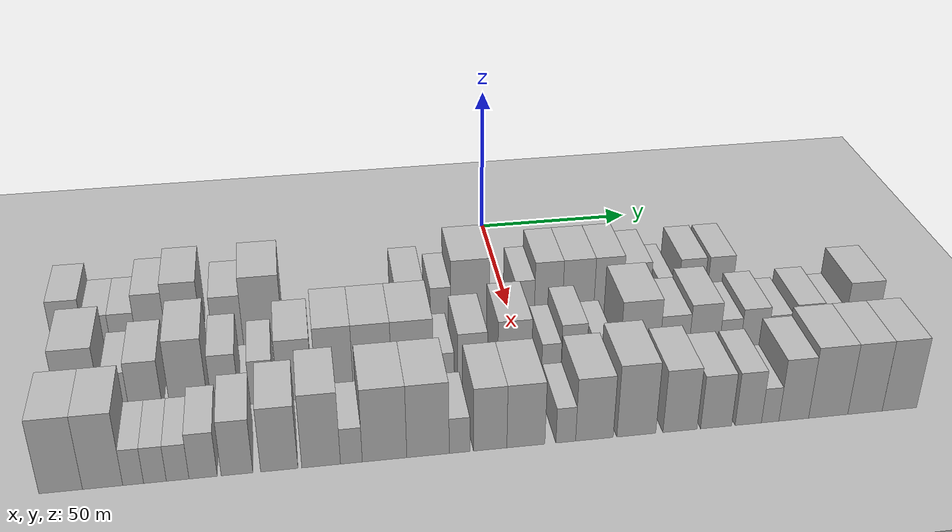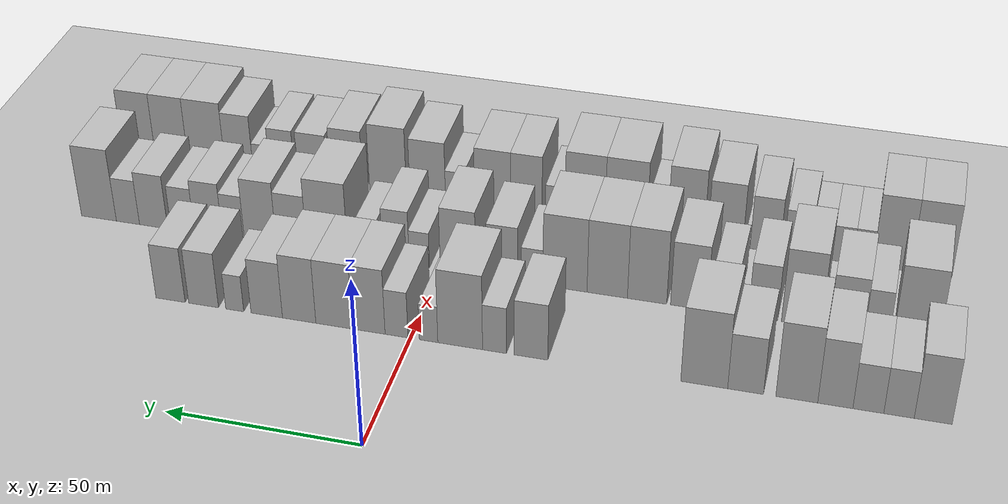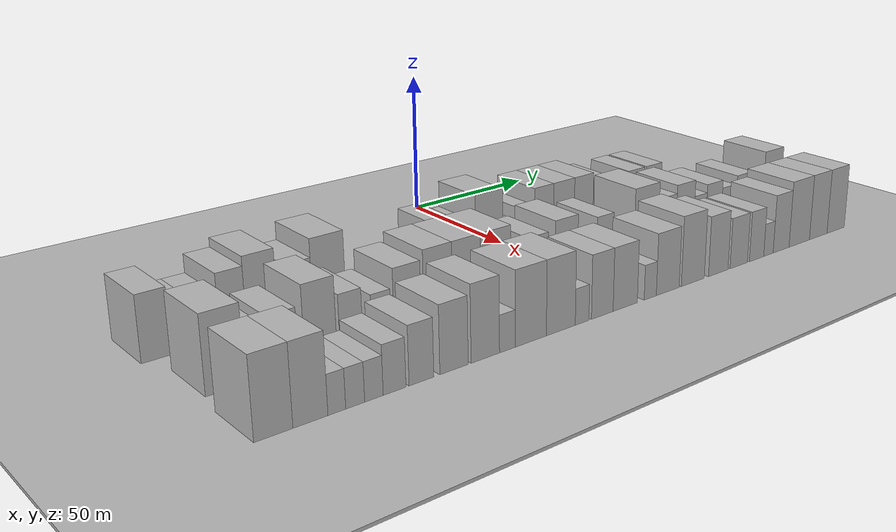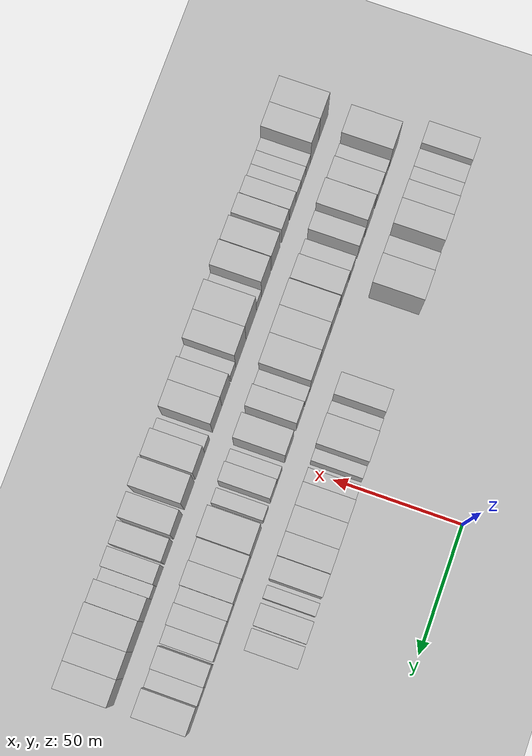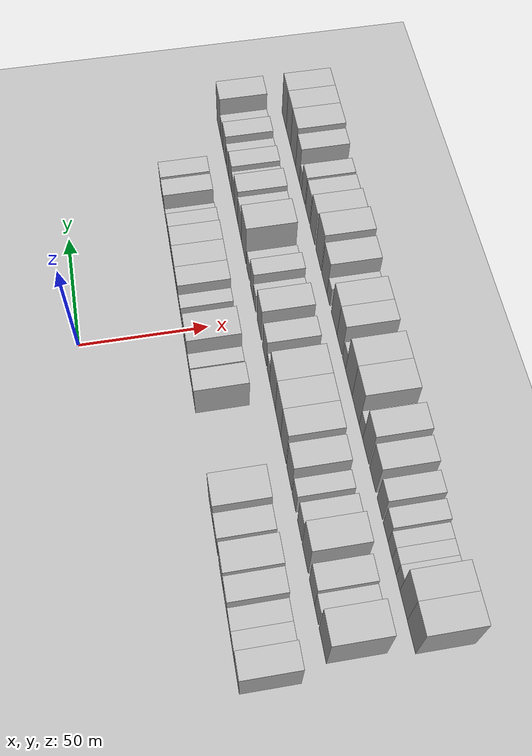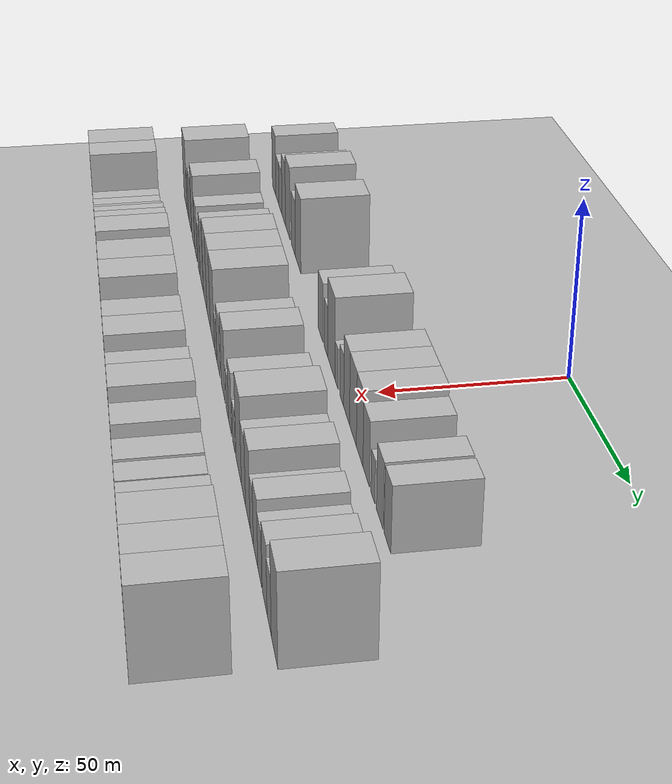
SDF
<sdf version="1.6">
 <world name="default">
  <include><name>ground_plane_1</name><uri>model://HANNAS_ground_plane</uri></include>
  <include>
   <name>ground_plane_2</name>
   <uri>model://HANNAS_ground_plane</uri>
   <pose>100 0 0  0 0 0</pose>
  </include>
  <model name="building_24">
   <static>1</static>
   <pose>50.0000 -131.1385 0 0.000000 0.000000 0.000000</pose>
   <link name="link">
    <pose>0 0 10.50 0 0 0</pose>
    <collision name="collision"><geometry><box><size>20.0000 9.0091 21.0000</size></box></geometry></collision>
    <visual name="visual">
     <cast_shadows>0</cast_shadows>
     <geometry><box><size>20.0000 9.0091 21.0000</size></box></geometry>
     <material>
      <script>
       <uri>model://HANNAS_wall/materials/scripts</uri>
       <uri>model://HANNAS_wall/materials/textures</uri>
       <name>vrc/HANNAS_wall</name>
      </script>
     </material>
    </visual>
   </link>
  </model>
  <model name="building_25">
   <static>1</static>
   <pose>50.0000 -122.9975 0 0.000000 0.000000 0.000000</pose>
   <link name="link">
    <pose>0 0 7.50 0 0 0</pose>
    <collision name="collision"><geometry><box><size>20.0000 7.2728 15.0000</size></box></geometry></collision>
    <visual name="visual">
     <cast_shadows>0</cast_shadows>
     <geometry><box><size>20.0000 7.2728 15.0000</size></box></geometry>
     <material>
      <script>
       <uri>model://HANNAS_wall/materials/scripts</uri>
       <uri>model://HANNAS_wall/materials/textures</uri>
       <name>vrc/HANNAS_wall</name>
      </script>
     </material>
    </visual>
   </link>
  </model>
  <model name="building_26">
   <static>1</static>
   <pose>50.0000 -115.6475 0 0.000000 0.000000 0.000000</pose>
   <link name="link">
    <pose>0 0 7.50 0 0 0</pose>
    <collision name="collision"><geometry><box><size>20.0000 7.4273 15.0000</size></box></geometry></collision>
    <visual name="visual">
     <cast_shadows>0</cast_shadows>
     <geometry><box><size>20.0000 7.4273 15.0000</size></box></geometry>
     <material>
      <script>
       <uri>model://HANNAS_wall/materials/scripts</uri>
       <uri>model://HANNAS_wall/materials/textures</uri>
       <name>vrc/HANNAS_wall</name>
      </script>
     </material>
    </visual>
   </link>
  </model>
  <model name="building_27">
   <static>1</static>
   <pose>50.0000 -107.6770 0 0.000000 0.000000 0.000000</pose>
   <link name="link">
    <pose>0 0 10.50 0 0 0</pose>
    <collision name="collision"><geometry><box><size>20.0000 8.5136 21.0000</size></box></geometry></collision>
    <visual name="visual">
     <cast_shadows>0</cast_shadows>
     <geometry><box><size>20.0000 8.5136 21.0000</size></box></geometry>
     <material>
      <script>
       <uri>model://HANNAS_wall/materials/scripts</uri>
       <uri>model://HANNAS_wall/materials/textures</uri>
       <name>vrc/HANNAS_wall</name>
      </script>
     </material>
    </visual>
   </link>
  </model>
  <model name="building_28">
   <static>1</static>
   <pose>50.0000 -98.3052 0 0.000000 0.000000 0.000000</pose>
   <link name="link">
    <pose>0 0 12.00 0 0 0</pose>
    <collision name="collision"><geometry><box><size>20.0000 10.2300 24.0000</size></box></geometry></collision>
    <visual name="visual">
     <cast_shadows>0</cast_shadows>
     <geometry><box><size>20.0000 10.2300 24.0000</size></box></geometry>
     <material>
      <script>
       <uri>model://HANNAS_wall/materials/scripts</uri>
       <uri>model://HANNAS_wall/materials/textures</uri>
       <name>vrc/HANNAS_wall</name>
      </script>
     </material>
    </visual>
   </link>
  </model>
  <model name="building_29">
   <static>1</static>
   <pose>50.0000 -85.7666 0 0.000000 0.000000 0.000000</pose>
   <link name="link">
    <pose>0 0 9.00 0 0 0</pose>
    <collision name="collision"><geometry><box><size>20.0000 8.8471 18.0000</size></box></geometry></collision>
    <visual name="visual">
     <cast_shadows>0</cast_shadows>
     <geometry><box><size>20.0000 8.8471 18.0000</size></box></geometry>
     <material>
      <script>
       <uri>model://HANNAS_wall/materials/scripts</uri>
       <uri>model://HANNAS_wall/materials/textures</uri>
       <name>vrc/HANNAS_wall</name>
      </script>
     </material>
    </visual>
   </link>
  </model>
  <model name="building_30">
   <static>1</static>
   <pose>50.0000 -75.5026 0 0.000000 0.000000 0.000000</pose>
   <link name="link">
    <pose>0 0 12.00 0 0 0</pose>
    <collision name="collision"><geometry><box><size>20.0000 11.6808 24.0000</size></box></geometry></collision>
    <visual name="visual">
     <cast_shadows>0</cast_shadows>
     <geometry><box><size>20.0000 11.6808 24.0000</size></box></geometry>
     <material>
      <script>
       <uri>model://HANNAS_wall/materials/scripts</uri>
       <uri>model://HANNAS_wall/materials/textures</uri>
       <name>vrc/HANNAS_wall</name>
      </script>
     </material>
    </visual>
   </link>
  </model>
  <model name="building_31">
   <static>1</static>
   <pose>50.0000 -31.6511 0 0.000000 0.000000 0.000000</pose>
   <link name="link">
    <pose>0 0 9.00 0 0 0</pose>
    <collision name="collision"><geometry><box><size>20.0000 8.6741 18.0000</size></box></geometry></collision>
    <visual name="visual">
     <cast_shadows>0</cast_shadows>
     <geometry><box><size>20.0000 8.6741 18.0000</size></box></geometry>
     <material>
      <script>
       <uri>model://HANNAS_wall/materials/scripts</uri>
       <uri>model://HANNAS_wall/materials/textures</uri>
       <name>vrc/HANNAS_wall</name>
      </script>
     </material>
    </visual>
   </link>
  </model>
  <model name="building_32">
   <static>1</static>
   <pose>50.0000 -22.1892 0 0.000000 0.000000 0.000000</pose>
   <link name="link">
    <pose>0 0 7.50 0 0 0</pose>
    <collision name="collision"><geometry><box><size>20.0000 6.2497 15.0000</size></box></geometry></collision>
    <visual name="visual">
     <cast_shadows>0</cast_shadows>
     <geometry><box><size>20.0000 6.2497 15.0000</size></box></geometry>
     <material>
      <script>
       <uri>model://HANNAS_wall/materials/scripts</uri>
       <uri>model://HANNAS_wall/materials/textures</uri>
       <name>vrc/HANNAS_wall</name>
      </script>
     </material>
    </visual>
   </link>
  </model>
  <model name="building_33">
   <static>1</static>
   <pose>50.0000 -13.2062 0 0.000000 0.000000 0.000000</pose>
   <link name="link">
    <pose>0 0 12.00 0 0 0</pose>
    <collision name="collision"><geometry><box><size>20.0000 11.7163 24.0000</size></box></geometry></collision>
    <visual name="visual">
     <cast_shadows>0</cast_shadows>
     <geometry><box><size>20.0000 11.7163 24.0000</size></box></geometry>
     <material>
      <script>
       <uri>model://HANNAS_wall/materials/scripts</uri>
       <uri>model://HANNAS_wall/materials/textures</uri>
       <name>vrc/HANNAS_wall</name>
      </script>
     </material>
    </visual>
   </link>
  </model>
  <model name="building_34">
   <static>1</static>
   <pose>50.0000 -4.9149 0 0.000000 0.000000 0.000000</pose>
   <link name="link">
    <pose>0 0 6.00 0 0 0</pose>
    <collision name="collision"><geometry><box><size>20.0000 4.8664 12.0000</size></box></geometry></collision>
    <visual name="visual">
     <cast_shadows>0</cast_shadows>
     <geometry><box><size>20.0000 4.8664 12.0000</size></box></geometry>
     <material>
      <script>
       <uri>model://HANNAS_wall/materials/scripts</uri>
       <uri>model://HANNAS_wall/materials/textures</uri>
       <name>vrc/HANNAS_wall</name>
      </script>
     </material>
    </visual>
   </link>
  </model>
  <model name="building_35">
   <static>1</static>
   <pose>50.0000 3.5625 0 0.000000 0.000000 0.000000</pose>
   <link name="link">
    <pose>0 0 7.50 0 0 0</pose>
    <collision name="collision"><geometry><box><size>20.0000 6.0884 15.0000</size></box></geometry></collision>
    <visual name="visual">
     <cast_shadows>0</cast_shadows>
     <geometry><box><size>20.0000 6.0884 15.0000</size></box></geometry>
     <material>
      <script>
       <uri>model://HANNAS_wall/materials/scripts</uri>
       <uri>model://HANNAS_wall/materials/textures</uri>
       <name>vrc/HANNAS_wall</name>
      </script>
     </material>
    </visual>
   </link>
  </model>
  <model name="building_36">
   <static>1</static>
   <pose>50.0000 10.9737 0 0.000000 0.000000 0.000000</pose>
   <link name="link">
    <pose>0 0 10.50 0 0 0</pose>
    <collision name="collision"><geometry><box><size>20.0000 8.7339 21.0000</size></box></geometry></collision>
    <visual name="visual">
     <cast_shadows>0</cast_shadows>
     <geometry><box><size>20.0000 8.7339 21.0000</size></box></geometry>
     <material>
      <script>
       <uri>model://HANNAS_wall/materials/scripts</uri>
       <uri>model://HANNAS_wall/materials/textures</uri>
       <name>vrc/HANNAS_wall</name>
      </script>
     </material>
    </visual>
   </link>
  </model>
  <model name="building_37">
   <static>1</static>
   <pose>50.0000 20.2652 0 0.000000 0.000000 0.000000</pose>
   <link name="link">
    <pose>0 0 10.50 0 0 0</pose>
    <collision name="collision"><geometry><box><size>20.0000 9.8492 21.0000</size></box></geometry></collision>
    <visual name="visual">
     <cast_shadows>0</cast_shadows>
     <geometry><box><size>20.0000 9.8492 21.0000</size></box></geometry>
     <material>
      <script>
       <uri>model://HANNAS_wall/materials/scripts</uri>
       <uri>model://HANNAS_wall/materials/textures</uri>
       <name>vrc/HANNAS_wall</name>
      </script>
     </material>
    </visual>
   </link>
  </model>
  <model name="building_38">
   <static>1</static>
   <pose>50.0000 29.7162 0 0.000000 0.000000 0.000000</pose>
   <link name="link">
    <pose>0 0 10.50 0 0 0</pose>
    <collision name="collision"><geometry><box><size>20.0000 9.0526 21.0000</size></box></geometry></collision>
    <visual name="visual">
     <cast_shadows>0</cast_shadows>
     <geometry><box><size>20.0000 9.0526 21.0000</size></box></geometry>
     <material>
      <script>
       <uri>model://HANNAS_wall/materials/scripts</uri>
       <uri>model://HANNAS_wall/materials/textures</uri>
       <name>vrc/HANNAS_wall</name>
      </script>
     </material>
    </visual>
   </link>
  </model>
  <model name="building_39">
   <static>1</static>
   <pose>50.0000 38.5405 0 0.000000 0.000000 0.000000</pose>
   <link name="link">
    <pose>0 0 9.00 0 0 0</pose>
    <collision name="collision"><geometry><box><size>20.0000 8.5960 18.0000</size></box></geometry></collision>
    <visual name="visual">
     <cast_shadows>0</cast_shadows>
     <geometry><box><size>20.0000 8.5960 18.0000</size></box></geometry>
     <material>
      <script>
       <uri>model://HANNAS_wall/materials/scripts</uri>
       <uri>model://HANNAS_wall/materials/textures</uri>
       <name>vrc/HANNAS_wall</name>
      </script>
     </material>
    </visual>
   </link>
  </model>
  <model name="building_40">
   <static>1</static>
   <pose>50.0000 47.3137 0 0.000000 0.000000 0.000000</pose>
   <link name="link">
    <pose>0 0 6.00 0 0 0</pose>
    <collision name="collision"><geometry><box><size>20.0000 4.9505 12.0000</size></box></geometry></collision>
    <visual name="visual">
     <cast_shadows>0</cast_shadows>
     <geometry><box><size>20.0000 4.9505 12.0000</size></box></geometry>
     <material>
      <script>
       <uri>model://HANNAS_wall/materials/scripts</uri>
       <uri>model://HANNAS_wall/materials/textures</uri>
       <name>vrc/HANNAS_wall</name>
      </script>
     </material>
    </visual>
   </link>
  </model>
  <model name="building_41">
   <static>1</static>
   <pose>50.0000 55.9212 0 0.000000 0.000000 0.000000</pose>
   <link name="link">
    <pose>0 0 9.00 0 0 0</pose>
    <collision name="collision"><geometry><box><size>20.0000 8.2644 18.0000</size></box></geometry></collision>
    <visual name="visual">
     <cast_shadows>0</cast_shadows>
     <geometry><box><size>20.0000 8.2644 18.0000</size></box></geometry>
     <material>
      <script>
       <uri>model://HANNAS_wall/materials/scripts</uri>
       <uri>model://HANNAS_wall/materials/textures</uri>
       <name>vrc/HANNAS_wall</name>
      </script>
     </material>
    </visual>
   </link>
  </model>
  <model name="building_42">
   <static>1</static>
   <pose>50.0000 65.1122 0 0.000000 0.000000 0.000000</pose>
   <link name="link">
    <pose>0 0 9.00 0 0 0</pose>
    <collision name="collision"><geometry><box><size>20.0000 8.1175 18.0000</size></box></geometry></collision>
    <visual name="visual">
     <cast_shadows>0</cast_shadows>
     <geometry><box><size>20.0000 8.1175 18.0000</size></box></geometry>
     <material>
      <script>
       <uri>model://HANNAS_wall/materials/scripts</uri>
       <uri>model://HANNAS_wall/materials/textures</uri>
       <name>vrc/HANNAS_wall</name>
      </script>
     </material>
    </visual>
   </link>
  </model>
  <model name="building_91">
   <static>1</static>
   <pose>79.0000 -125.2191 0 0.000000 0.000000 0.000000</pose>
   <link name="link">
    <pose>0 0 12.00 0 0 0</pose>
    <collision name="collision"><geometry><box><size>20.0000 11.4452 24.0000</size></box></geometry></collision>
    <visual name="visual">
     <cast_shadows>0</cast_shadows>
     <geometry><box><size>20.0000 11.4452 24.0000</size></box></geometry>
     <material>
      <script>
       <uri>model://HANNAS_wall/materials/scripts</uri>
       <uri>model://HANNAS_wall/materials/textures</uri>
       <name>vrc/HANNAS_wall</name>
      </script>
     </material>
    </visual>
   </link>
  </model>
  <model name="building_92">
   <static>1</static>
   <pose>79.0000 -115.3726 0 0.000000 0.000000 0.000000</pose>
   <link name="link">
    <pose>0 0 7.50 0 0 0</pose>
    <collision name="collision"><geometry><box><size>20.0000 6.2477 15.0000</size></box></geometry></collision>
    <visual name="visual">
     <cast_shadows>0</cast_shadows>
     <geometry><box><size>20.0000 6.2477 15.0000</size></box></geometry>
     <material>
      <script>
       <uri>model://HANNAS_wall/materials/scripts</uri>
       <uri>model://HANNAS_wall/materials/textures</uri>
       <name>vrc/HANNAS_wall</name>
      </script>
     </material>
    </visual>
   </link>
  </model>
  <model name="building_93">
   <static>1</static>
   <pose>79.0000 -107.7630 0 0.000000 0.000000 0.000000</pose>
   <link name="link">
    <pose>0 0 9.00 0 0 0</pose>
    <collision name="collision"><geometry><box><size>20.0000 8.9715 18.0000</size></box></geometry></collision>
    <visual name="visual">
     <cast_shadows>0</cast_shadows>
     <geometry><box><size>20.0000 8.9715 18.0000</size></box></geometry>
     <material>
      <script>
       <uri>model://HANNAS_wall/materials/scripts</uri>
       <uri>model://HANNAS_wall/materials/textures</uri>
       <name>vrc/HANNAS_wall</name>
      </script>
     </material>
    </visual>
   </link>
  </model>
  <model name="building_94">
   <static>1</static>
   <pose>79.0000 -96.1327 0 0.000000 0.000000 0.000000</pose>
   <link name="link">
    <pose>0 0 12.00 0 0 0</pose>
    <collision name="collision"><geometry><box><size>20.0000 10.2889 24.0000</size></box></geometry></collision>
    <visual name="visual">
     <cast_shadows>0</cast_shadows>
     <geometry><box><size>20.0000 10.2889 24.0000</size></box></geometry>
     <material>
      <script>
       <uri>model://HANNAS_wall/materials/scripts</uri>
       <uri>model://HANNAS_wall/materials/textures</uri>
       <name>vrc/HANNAS_wall</name>
      </script>
     </material>
    </visual>
   </link>
  </model>
  <model name="building_95">
   <static>1</static>
   <pose>79.0000 -86.2134 0 0.000000 0.000000 0.000000</pose>
   <link name="link">
    <pose>0 0 9.00 0 0 0</pose>
    <collision name="collision"><geometry><box><size>20.0000 7.5497 18.0000</size></box></geometry></collision>
    <visual name="visual">
     <cast_shadows>0</cast_shadows>
     <geometry><box><size>20.0000 7.5497 18.0000</size></box></geometry>
     <material>
      <script>
       <uri>model://HANNAS_wall/materials/scripts</uri>
       <uri>model://HANNAS_wall/materials/textures</uri>
       <name>vrc/HANNAS_wall</name>
      </script>
     </material>
    </visual>
   </link>
  </model>
  <model name="building_96">
   <static>1</static>
   <pose>79.0000 -76.0758 0 0.000000 0.000000 0.000000</pose>
   <link name="link">
    <pose>0 0 7.50 0 0 0</pose>
    <collision name="collision"><geometry><box><size>20.0000 6.7255 15.0000</size></box></geometry></collision>
    <visual name="visual">
     <cast_shadows>0</cast_shadows>
     <geometry><box><size>20.0000 6.7255 15.0000</size></box></geometry>
     <material>
      <script>
       <uri>model://HANNAS_wall/materials/scripts</uri>
       <uri>model://HANNAS_wall/materials/textures</uri>
       <name>vrc/HANNAS_wall</name>
      </script>
     </material>
    </visual>
   </link>
  </model>
  <model name="building_97">
   <static>1</static>
   <pose>79.0000 -66.9052 0 0.000000 0.000000 0.000000</pose>
   <link name="link">
    <pose>0 0 10.50 0 0 0</pose>
    <collision name="collision"><geometry><box><size>20.0000 9.6157 21.0000</size></box></geometry></collision>
    <visual name="visual">
     <cast_shadows>0</cast_shadows>
     <geometry><box><size>20.0000 9.6157 21.0000</size></box></geometry>
     <material>
      <script>
       <uri>model://HANNAS_wall/materials/scripts</uri>
       <uri>model://HANNAS_wall/materials/textures</uri>
       <name>vrc/HANNAS_wall</name>
      </script>
     </material>
    </visual>
   </link>
  </model>
  <model name="building_98">
   <static>1</static>
   <pose>79.0000 -55.8953 0 0.000000 0.000000 0.000000</pose>
   <link name="link">
    <pose>0 0 12.00 0 0 0</pose>
    <collision name="collision"><geometry><box><size>20.0000 10.4041 24.0000</size></box></geometry></collision>
    <visual name="visual">
     <cast_shadows>0</cast_shadows>
     <geometry><box><size>20.0000 10.4041 24.0000</size></box></geometry>
     <material>
      <script>
       <uri>model://HANNAS_wall/materials/scripts</uri>
       <uri>model://HANNAS_wall/materials/textures</uri>
       <name>vrc/HANNAS_wall</name>
      </script>
     </material>
    </visual>
   </link>
  </model>
  <model name="building_99">
   <static>1</static>
   <pose>79.0000 -45.2925 0 0.000000 0.000000 0.000000</pose>
   <link name="link">
    <pose>0 0 12.00 0 0 0</pose>
    <collision name="collision"><geometry><box><size>20.0000 10.8014 24.0000</size></box></geometry></collision>
    <visual name="visual">
     <cast_shadows>0</cast_shadows>
     <geometry><box><size>20.0000 10.8014 24.0000</size></box></geometry>
     <material>
      <script>
       <uri>model://HANNAS_wall/materials/scripts</uri>
       <uri>model://HANNAS_wall/materials/textures</uri>
       <name>vrc/HANNAS_wall</name>
      </script>
     </material>
    </visual>
   </link>
  </model>
  <model name="building_100">
   <static>1</static>
   <pose>79.0000 -33.9349 0 0.000000 0.000000 0.000000</pose>
   <link name="link">
    <pose>0 0 12.00 0 0 0</pose>
    <collision name="collision"><geometry><box><size>20.0000 11.9140 24.0000</size></box></geometry></collision>
    <visual name="visual">
     <cast_shadows>0</cast_shadows>
     <geometry><box><size>20.0000 11.9140 24.0000</size></box></geometry>
     <material>
      <script>
       <uri>model://HANNAS_wall/materials/scripts</uri>
       <uri>model://HANNAS_wall/materials/textures</uri>
       <name>vrc/HANNAS_wall</name>
      </script>
     </material>
    </visual>
   </link>
  </model>
  <model name="building_101">
   <static>1</static>
   <pose>79.0000 -25.0374 0 0.000000 0.000000 0.000000</pose>
   <link name="link">
    <pose>0 0 6.00 0 0 0</pose>
    <collision name="collision"><geometry><box><size>20.0000 5.8810 12.0000</size></box></geometry></collision>
    <visual name="visual">
     <cast_shadows>0</cast_shadows>
     <geometry><box><size>20.0000 5.8810 12.0000</size></box></geometry>
     <material>
      <script>
       <uri>model://HANNAS_wall/materials/scripts</uri>
       <uri>model://HANNAS_wall/materials/textures</uri>
       <name>vrc/HANNAS_wall</name>
      </script>
     </material>
    </visual>
   </link>
  </model>
  <model name="building_102">
   <static>1</static>
   <pose>79.0000 -16.8628 0 0.000000 0.000000 0.000000</pose>
   <link name="link">
    <pose>0 0 9.00 0 0 0</pose>
    <collision name="collision"><geometry><box><size>20.0000 8.4681 18.0000</size></box></geometry></collision>
    <visual name="visual">
     <cast_shadows>0</cast_shadows>
     <geometry><box><size>20.0000 8.4681 18.0000</size></box></geometry>
     <material>
      <script>
       <uri>model://HANNAS_wall/materials/scripts</uri>
       <uri>model://HANNAS_wall/materials/textures</uri>
       <name>vrc/HANNAS_wall</name>
      </script>
     </material>
    </visual>
   </link>
  </model>
  <model name="building_103">
   <static>1</static>
   <pose>79.0000 -4.7657 0 0.000000 0.000000 0.000000</pose>
   <link name="link">
    <pose>0 0 10.50 0 0 0</pose>
    <collision name="collision"><geometry><box><size>20.0000 9.7261 21.0000</size></box></geometry></collision>
    <visual name="visual">
     <cast_shadows>0</cast_shadows>
     <geometry><box><size>20.0000 9.7261 21.0000</size></box></geometry>
     <material>
      <script>
       <uri>model://HANNAS_wall/materials/scripts</uri>
       <uri>model://HANNAS_wall/materials/textures</uri>
       <name>vrc/HANNAS_wall</name>
      </script>
     </material>
    </visual>
   </link>
  </model>
  <model name="building_104">
   <static>1</static>
   <pose>79.0000 5.8909 0 0.000000 0.000000 0.000000</pose>
   <link name="link">
    <pose>0 0 6.00 0 0 0</pose>
    <collision name="collision"><geometry><box><size>20.0000 5.5873 12.0000</size></box></geometry></collision>
    <visual name="visual">
     <cast_shadows>0</cast_shadows>
     <geometry><box><size>20.0000 5.5873 12.0000</size></box></geometry>
     <material>
      <script>
       <uri>model://HANNAS_wall/materials/scripts</uri>
       <uri>model://HANNAS_wall/materials/textures</uri>
       <name>vrc/HANNAS_wall</name>
      </script>
     </material>
    </visual>
   </link>
  </model>
  <model name="building_105">
   <static>1</static>
   <pose>79.0000 12.4101 0 0.000000 0.000000 0.000000</pose>
   <link name="link">
    <pose>0 0 9.00 0 0 0</pose>
    <collision name="collision"><geometry><box><size>20.0000 7.4510 18.0000</size></box></geometry></collision>
    <visual name="visual">
     <cast_shadows>0</cast_shadows>
     <geometry><box><size>20.0000 7.4510 18.0000</size></box></geometry>
     <material>
      <script>
       <uri>model://HANNAS_wall/materials/scripts</uri>
       <uri>model://HANNAS_wall/materials/textures</uri>
       <name>vrc/HANNAS_wall</name>
      </script>
     </material>
    </visual>
   </link>
  </model>
  <model name="building_106">
   <static>1</static>
   <pose>79.0000 21.0385 0 0.000000 0.000000 0.000000</pose>
   <link name="link">
    <pose>0 0 6.00 0 0 0</pose>
    <collision name="collision"><geometry><box><size>20.0000 5.8059 12.0000</size></box></geometry></collision>
    <visual name="visual">
     <cast_shadows>0</cast_shadows>
     <geometry><box><size>20.0000 5.8059 12.0000</size></box></geometry>
     <material>
      <script>
       <uri>model://HANNAS_wall/materials/scripts</uri>
       <uri>model://HANNAS_wall/materials/textures</uri>
       <name>vrc/HANNAS_wall</name>
      </script>
     </material>
    </visual>
   </link>
  </model>
  <model name="building_107">
   <static>1</static>
   <pose>79.0000 31.7597 0 0.000000 0.000000 0.000000</pose>
   <link name="link">
    <pose>0 0 12.00 0 0 0</pose>
    <collision name="collision"><geometry><box><size>20.0000 11.6365 24.0000</size></box></geometry></collision>
    <visual name="visual">
     <cast_shadows>0</cast_shadows>
     <geometry><box><size>20.0000 11.6365 24.0000</size></box></geometry>
     <material>
      <script>
       <uri>model://HANNAS_wall/materials/scripts</uri>
       <uri>model://HANNAS_wall/materials/textures</uri>
       <name>vrc/HANNAS_wall</name>
      </script>
     </material>
    </visual>
   </link>
  </model>
  <model name="building_108">
   <static>1</static>
   <pose>79.0000 41.9404 0 0.000000 0.000000 0.000000</pose>
   <link name="link">
    <pose>0 0 9.00 0 0 0</pose>
    <collision name="collision"><geometry><box><size>20.0000 8.7250 18.0000</size></box></geometry></collision>
    <visual name="visual">
     <cast_shadows>0</cast_shadows>
     <geometry><box><size>20.0000 8.7250 18.0000</size></box></geometry>
     <material>
      <script>
       <uri>model://HANNAS_wall/materials/scripts</uri>
       <uri>model://HANNAS_wall/materials/textures</uri>
       <name>vrc/HANNAS_wall</name>
      </script>
     </material>
    </visual>
   </link>
  </model>
  <model name="building_109">
   <static>1</static>
   <pose>79.0000 50.8789 0 0.000000 0.000000 0.000000</pose>
   <link name="link">
    <pose>0 0 10.50 0 0 0</pose>
    <collision name="collision"><geometry><box><size>20.0000 9.1520 21.0000</size></box></geometry></collision>
    <visual name="visual">
     <cast_shadows>0</cast_shadows>
     <geometry><box><size>20.0000 9.1520 21.0000</size></box></geometry>
     <material>
      <script>
       <uri>model://HANNAS_wall/materials/scripts</uri>
       <uri>model://HANNAS_wall/materials/textures</uri>
       <name>vrc/HANNAS_wall</name>
      </script>
     </material>
    </visual>
   </link>
  </model>
  <model name="building_110">
   <static>1</static>
   <pose>79.0000 58.6496 0 0.000000 0.000000 0.000000</pose>
   <link name="link">
    <pose>0 0 7.50 0 0 0</pose>
    <collision name="collision"><geometry><box><size>20.0000 6.3894 15.0000</size></box></geometry></collision>
    <visual name="visual">
     <cast_shadows>0</cast_shadows>
     <geometry><box><size>20.0000 6.3894 15.0000</size></box></geometry>
     <material>
      <script>
       <uri>model://HANNAS_wall/materials/scripts</uri>
       <uri>model://HANNAS_wall/materials/textures</uri>
       <name>vrc/HANNAS_wall</name>
      </script>
     </material>
    </visual>
   </link>
  </model>
  <model name="building_111">
   <static>1</static>
   <pose>79.0000 65.9313 0 0.000000 0.000000 0.000000</pose>
   <link name="link">
    <pose>0 0 9.00 0 0 0</pose>
    <collision name="collision"><geometry><box><size>20.0000 8.1739 18.0000</size></box></geometry></collision>
    <visual name="visual">
     <cast_shadows>0</cast_shadows>
     <geometry><box><size>20.0000 8.1739 18.0000</size></box></geometry>
     <material>
      <script>
       <uri>model://HANNAS_wall/materials/scripts</uri>
       <uri>model://HANNAS_wall/materials/textures</uri>
       <name>vrc/HANNAS_wall</name>
      </script>
     </material>
    </visual>
   </link>
  </model>
  <model name="building_112">
   <static>1</static>
   <pose>79.0000 73.4394 0 0.000000 0.000000 0.000000</pose>
   <link name="link">
    <pose>0 0 7.50 0 0 0</pose>
    <collision name="collision"><geometry><box><size>20.0000 6.8423 15.0000</size></box></geometry></collision>
    <visual name="visual">
     <cast_shadows>0</cast_shadows>
     <geometry><box><size>20.0000 6.8423 15.0000</size></box></geometry>
     <material>
      <script>
       <uri>model://HANNAS_wall/materials/scripts</uri>
       <uri>model://HANNAS_wall/materials/textures</uri>
       <name>vrc/HANNAS_wall</name>
      </script>
     </material>
    </visual>
   </link>
  </model>
  <model name="building_113">
   <static>1</static>
   <pose>79.0000 82.0171 0 0.000000 0.000000 0.000000</pose>
   <link name="link">
    <pose>0 0 9.00 0 0 0</pose>
    <collision name="collision"><geometry><box><size>20.0000 8.3131 18.0000</size></box></geometry></collision>
    <visual name="visual">
     <cast_shadows>0</cast_shadows>
     <geometry><box><size>20.0000 8.3131 18.0000</size></box></geometry>
     <material>
      <script>
       <uri>model://HANNAS_wall/materials/scripts</uri>
       <uri>model://HANNAS_wall/materials/textures</uri>
       <name>vrc/HANNAS_wall</name>
      </script>
     </material>
    </visual>
   </link>
  </model>
  <model name="building_114">
   <static>1</static>
   <pose>79.0000 89.6029 0 0.000000 0.000000 0.000000</pose>
   <link name="link">
    <pose>0 0 7.50 0 0 0</pose>
    <collision name="collision"><geometry><box><size>20.0000 6.8586 15.0000</size></box></geometry></collision>
    <visual name="visual">
     <cast_shadows>0</cast_shadows>
     <geometry><box><size>20.0000 6.8586 15.0000</size></box></geometry>
     <material>
      <script>
       <uri>model://HANNAS_wall/materials/scripts</uri>
       <uri>model://HANNAS_wall/materials/textures</uri>
       <name>vrc/HANNAS_wall</name>
      </script>
     </material>
    </visual>
   </link>
  </model>
  <model name="building_115">
   <static>1</static>
   <pose>79.0000 98.2229 0 0.000000 0.000000 0.000000</pose>
   <link name="link">
    <pose>0 0 12.00 0 0 0</pose>
    <collision name="collision"><geometry><box><size>20.0000 10.3814 24.0000</size></box></geometry></collision>
    <visual name="visual">
     <cast_shadows>0</cast_shadows>
     <geometry><box><size>20.0000 10.3814 24.0000</size></box></geometry>
     <material>
      <script>
       <uri>model://HANNAS_wall/materials/scripts</uri>
       <uri>model://HANNAS_wall/materials/textures</uri>
       <name>vrc/HANNAS_wall</name>
      </script>
     </material>
    </visual>
   </link>
  </model>
  <model name="building_158">
   <static>1</static>
   <pose>108.0000 -127.3180 0 0.000000 0.000000 0.000000</pose>
   <link name="link">
    <pose>0 0 12.00 0 0 0</pose>
    <collision name="collision"><geometry><box><size>20.0000 10.8003 24.0000</size></box></geometry></collision>
    <visual name="visual">
     <cast_shadows>0</cast_shadows>
     <geometry><box><size>20.0000 10.8003 24.0000</size></box></geometry>
     <material>
      <script>
       <uri>model://HANNAS_wall/materials/scripts</uri>
       <uri>model://HANNAS_wall/materials/textures</uri>
       <name>vrc/HANNAS_wall</name>
      </script>
     </material>
    </visual>
   </link>
  </model>
  <model name="building_159">
   <static>1</static>
   <pose>108.0000 -116.9004 0 0.000000 0.000000 0.000000</pose>
   <link name="link">
    <pose>0 0 12.00 0 0 0</pose>
    <collision name="collision"><geometry><box><size>20.0000 10.0351 24.0000</size></box></geometry></collision>
    <visual name="visual">
     <cast_shadows>0</cast_shadows>
     <geometry><box><size>20.0000 10.0351 24.0000</size></box></geometry>
     <material>
      <script>
       <uri>model://HANNAS_wall/materials/scripts</uri>
       <uri>model://HANNAS_wall/materials/textures</uri>
       <name>vrc/HANNAS_wall</name>
      </script>
     </material>
    </visual>
   </link>
  </model>
  <model name="building_160">
   <static>1</static>
   <pose>108.0000 -109.2618 0 0.000000 0.000000 0.000000</pose>
   <link name="link">
    <pose>0 0 6.00 0 0 0</pose>
    <collision name="collision"><geometry><box><size>20.0000 5.2422 12.0000</size></box></geometry></collision>
    <visual name="visual">
     <cast_shadows>0</cast_shadows>
     <geometry><box><size>20.0000 5.2422 12.0000</size></box></geometry>
     <material>
      <script>
       <uri>model://HANNAS_wall/materials/scripts</uri>
       <uri>model://HANNAS_wall/materials/textures</uri>
       <name>vrc/HANNAS_wall</name>
      </script>
     </material>
    </visual>
   </link>
  </model>
  <model name="building_161">
   <static>1</static>
   <pose>108.0000 -103.7779 0 0.000000 0.000000 0.000000</pose>
   <link name="link">
    <pose>0 0 6.00 0 0 0</pose>
    <collision name="collision"><geometry><box><size>20.0000 5.7256 12.0000</size></box></geometry></collision>
    <visual name="visual">
     <cast_shadows>0</cast_shadows>
     <geometry><box><size>20.0000 5.7256 12.0000</size></box></geometry>
     <material>
      <script>
       <uri>model://HANNAS_wall/materials/scripts</uri>
       <uri>model://HANNAS_wall/materials/textures</uri>
       <name>vrc/HANNAS_wall</name>
      </script>
     </material>
    </visual>
   </link>
  </model>
  <model name="building_162">
   <static>1</static>
   <pose>108.0000 -98.0550 0 0.000000 0.000000 0.000000</pose>
   <link name="link">
    <pose>0 0 6.00 0 0 0</pose>
    <collision name="collision"><geometry><box><size>20.0000 5.7201 12.0000</size></box></geometry></collision>
    <visual name="visual">
     <cast_shadows>0</cast_shadows>
     <geometry><box><size>20.0000 5.7201 12.0000</size></box></geometry>
     <material>
      <script>
       <uri>model://HANNAS_wall/materials/scripts</uri>
       <uri>model://HANNAS_wall/materials/textures</uri>
       <name>vrc/HANNAS_wall</name>
      </script>
     </material>
    </visual>
   </link>
  </model>
  <model name="building_163">
   <static>1</static>
   <pose>108.0000 -91.6006 0 0.000000 0.000000 0.000000</pose>
   <link name="link">
    <pose>0 0 7.50 0 0 0</pose>
    <collision name="collision"><geometry><box><size>20.0000 7.1886 15.0000</size></box></geometry></collision>
    <visual name="visual">
     <cast_shadows>0</cast_shadows>
     <geometry><box><size>20.0000 7.1886 15.0000</size></box></geometry>
     <material>
      <script>
       <uri>model://HANNAS_wall/materials/scripts</uri>
       <uri>model://HANNAS_wall/materials/textures</uri>
       <name>vrc/HANNAS_wall</name>
      </script>
     </material>
    </visual>
   </link>
  </model>
  <model name="building_164">
   <static>1</static>
   <pose>108.0000 -82.9551 0 0.000000 0.000000 0.000000</pose>
   <link name="link">
    <pose>0 0 9.00 0 0 0</pose>
    <collision name="collision"><geometry><box><size>20.0000 8.1024 18.0000</size></box></geometry></collision>
    <visual name="visual">
     <cast_shadows>0</cast_shadows>
     <geometry><box><size>20.0000 8.1024 18.0000</size></box></geometry>
     <material>
      <script>
       <uri>model://HANNAS_wall/materials/scripts</uri>
       <uri>model://HANNAS_wall/materials/textures</uri>
       <name>vrc/HANNAS_wall</name>
      </script>
     </material>
    </visual>
   </link>
  </model>
  <model name="building_165">
   <static>1</static>
   <pose>108.0000 -72.0900 0 0.000000 0.000000 0.000000</pose>
   <link name="link">
    <pose>0 0 10.50 0 0 0</pose>
    <collision name="collision"><geometry><box><size>20.0000 9.6277 21.0000</size></box></geometry></collision>
    <visual name="visual">
     <cast_shadows>0</cast_shadows>
     <geometry><box><size>20.0000 9.6277 21.0000</size></box></geometry>
     <material>
      <script>
       <uri>model://HANNAS_wall/materials/scripts</uri>
       <uri>model://HANNAS_wall/materials/textures</uri>
       <name>vrc/HANNAS_wall</name>
      </script>
     </material>
    </visual>
   </link>
  </model>
  <model name="building_166">
   <static>1</static>
   <pose>108.0000 -61.2458 0 0.000000 0.000000 0.000000</pose>
   <link name="link">
    <pose>0 0 12.00 0 0 0</pose>
    <collision name="collision"><geometry><box><size>20.0000 10.0608 24.0000</size></box></geometry></collision>
    <visual name="visual">
     <cast_shadows>0</cast_shadows>
     <geometry><box><size>20.0000 10.0608 24.0000</size></box></geometry>
     <material>
      <script>
       <uri>model://HANNAS_wall/materials/scripts</uri>
       <uri>model://HANNAS_wall/materials/textures</uri>
       <name>vrc/HANNAS_wall</name>
      </script>
     </material>
    </visual>
   </link>
  </model>
  <model name="building_167">
   <static>1</static>
   <pose>108.0000 -53.3576 0 0.000000 0.000000 0.000000</pose>
   <link name="link">
    <pose>0 0 6.00 0 0 0</pose>
    <collision name="collision"><geometry><box><size>20.0000 5.7157 12.0000</size></box></geometry></collision>
    <visual name="visual">
     <cast_shadows>0</cast_shadows>
     <geometry><box><size>20.0000 5.7157 12.0000</size></box></geometry>
     <material>
      <script>
       <uri>model://HANNAS_wall/materials/scripts</uri>
       <uri>model://HANNAS_wall/materials/textures</uri>
       <name>vrc/HANNAS_wall</name>
      </script>
     </material>
    </visual>
   </link>
  </model>
  <model name="building_168">
   <static>1</static>
   <pose>108.0000 -44.6346 0 0.000000 0.000000 0.000000</pose>
   <link name="link">
    <pose>0 0 12.00 0 0 0</pose>
    <collision name="collision"><geometry><box><size>20.0000 11.7302 24.0000</size></box></geometry></collision>
    <visual name="visual">
     <cast_shadows>0</cast_shadows>
     <geometry><box><size>20.0000 11.7302 24.0000</size></box></geometry>
     <material>
      <script>
       <uri>model://HANNAS_wall/materials/scripts</uri>
       <uri>model://HANNAS_wall/materials/textures</uri>
       <name>vrc/HANNAS_wall</name>
      </script>
     </material>
    </visual>
   </link>
  </model>
  <model name="building_169">
   <static>1</static>
   <pose>108.0000 -33.1351 0 0.000000 0.000000 0.000000</pose>
   <link name="link">
    <pose>0 0 12.00 0 0 0</pose>
    <collision name="collision"><geometry><box><size>20.0000 11.2688 24.0000</size></box></geometry></collision>
    <visual name="visual">
     <cast_shadows>0</cast_shadows>
     <geometry><box><size>20.0000 11.2688 24.0000</size></box></geometry>
     <material>
      <script>
       <uri>model://HANNAS_wall/materials/scripts</uri>
       <uri>model://HANNAS_wall/materials/textures</uri>
       <name>vrc/HANNAS_wall</name>
      </script>
     </material>
    </visual>
   </link>
  </model>
  <model name="building_170">
   <static>1</static>
   <pose>108.0000 -24.7556 0 0.000000 0.000000 0.000000</pose>
   <link name="link">
    <pose>0 0 6.00 0 0 0</pose>
    <collision name="collision"><geometry><box><size>20.0000 5.4902 12.0000</size></box></geometry></collision>
    <visual name="visual">
     <cast_shadows>0</cast_shadows>
     <geometry><box><size>20.0000 5.4902 12.0000</size></box></geometry>
     <material>
      <script>
       <uri>model://HANNAS_wall/materials/scripts</uri>
       <uri>model://HANNAS_wall/materials/textures</uri>
       <name>vrc/HANNAS_wall</name>
      </script>
     </material>
    </visual>
   </link>
  </model>
  <model name="building_171">
   <static>1</static>
   <pose>108.0000 -16.5234 0 0.000000 0.000000 0.000000</pose>
   <link name="link">
    <pose>0 0 10.50 0 0 0</pose>
    <collision name="collision"><geometry><box><size>20.0000 8.9742 21.0000</size></box></geometry></collision>
    <visual name="visual">
     <cast_shadows>0</cast_shadows>
     <geometry><box><size>20.0000 8.9742 21.0000</size></box></geometry>
     <material>
      <script>
       <uri>model://HANNAS_wall/materials/scripts</uri>
       <uri>model://HANNAS_wall/materials/textures</uri>
       <name>vrc/HANNAS_wall</name>
      </script>
     </material>
    </visual>
   </link>
  </model>
  <model name="building_172">
   <static>1</static>
   <pose>108.0000 -6.8817 0 0.000000 0.000000 0.000000</pose>
   <link name="link">
    <pose>0 0 10.50 0 0 0</pose>
    <collision name="collision"><geometry><box><size>20.0000 10.3091 21.0000</size></box></geometry></collision>
    <visual name="visual">
     <cast_shadows>0</cast_shadows>
     <geometry><box><size>20.0000 10.3091 21.0000</size></box></geometry>
     <material>
      <script>
       <uri>model://HANNAS_wall/materials/scripts</uri>
       <uri>model://HANNAS_wall/materials/textures</uri>
       <name>vrc/HANNAS_wall</name>
      </script>
     </material>
    </visual>
   </link>
  </model>
  <model name="building_173">
   <static>1</static>
   <pose>108.0000 3.9618 0 0.000000 0.000000 0.000000</pose>
   <link name="link">
    <pose>0 0 6.00 0 0 0</pose>
    <collision name="collision"><geometry><box><size>20.0000 5.3779 12.0000</size></box></geometry></collision>
    <visual name="visual">
     <cast_shadows>0</cast_shadows>
     <geometry><box><size>20.0000 5.3779 12.0000</size></box></geometry>
     <material>
      <script>
       <uri>model://HANNAS_wall/materials/scripts</uri>
       <uri>model://HANNAS_wall/materials/textures</uri>
       <name>vrc/HANNAS_wall</name>
      </script>
     </material>
    </visual>
   </link>
  </model>
  <model name="building_174">
   <static>1</static>
   <pose>108.0000 11.8161 0 0.000000 0.000000 0.000000</pose>
   <link name="link">
    <pose>0 0 10.50 0 0 0</pose>
    <collision name="collision"><geometry><box><size>20.0000 10.3307 21.0000</size></box></geometry></collision>
    <visual name="visual">
     <cast_shadows>0</cast_shadows>
     <geometry><box><size>20.0000 10.3307 21.0000</size></box></geometry>
     <material>
      <script>
       <uri>model://HANNAS_wall/materials/scripts</uri>
       <uri>model://HANNAS_wall/materials/textures</uri>
       <name>vrc/HANNAS_wall</name>
      </script>
     </material>
    </visual>
   </link>
  </model>
  <model name="building_175">
   <static>1</static>
   <pose>108.0000 23.3815 0 0.000000 0.000000 0.000000</pose>
   <link name="link">
    <pose>0 0 12.00 0 0 0</pose>
    <collision name="collision"><geometry><box><size>20.0000 10.8001 24.0000</size></box></geometry></collision>
    <visual name="visual">
     <cast_shadows>0</cast_shadows>
     <geometry><box><size>20.0000 10.8001 24.0000</size></box></geometry>
     <material>
      <script>
       <uri>model://HANNAS_wall/materials/scripts</uri>
       <uri>model://HANNAS_wall/materials/textures</uri>
       <name>vrc/HANNAS_wall</name>
      </script>
     </material>
    </visual>
   </link>
  </model>
  <model name="building_176">
   <static>1</static>
   <pose>108.0000 35.5466 0 0.000000 0.000000 0.000000</pose>
   <link name="link">
    <pose>0 0 10.50 0 0 0</pose>
    <collision name="collision"><geometry><box><size>20.0000 9.5301 21.0000</size></box></geometry></collision>
    <visual name="visual">
     <cast_shadows>0</cast_shadows>
     <geometry><box><size>20.0000 9.5301 21.0000</size></box></geometry>
     <material>
      <script>
       <uri>model://HANNAS_wall/materials/scripts</uri>
       <uri>model://HANNAS_wall/materials/textures</uri>
       <name>vrc/HANNAS_wall</name>
      </script>
     </material>
    </visual>
   </link>
  </model>
  <model name="building_177">
   <static>1</static>
   <pose>108.0000 45.6844 0 0.000000 0.000000 0.000000</pose>
   <link name="link">
    <pose>0 0 9.00 0 0 0</pose>
    <collision name="collision"><geometry><box><size>20.0000 8.7454 18.0000</size></box></geometry></collision>
    <visual name="visual">
     <cast_shadows>0</cast_shadows>
     <geometry><box><size>20.0000 8.7454 18.0000</size></box></geometry>
     <material>
      <script>
       <uri>model://HANNAS_wall/materials/scripts</uri>
       <uri>model://HANNAS_wall/materials/textures</uri>
       <name>vrc/HANNAS_wall</name>
      </script>
     </material>
    </visual>
   </link>
  </model>
  <model name="building_178">
   <static>1</static>
   <pose>108.0000 54.7812 0 0.000000 0.000000 0.000000</pose>
   <link name="link">
    <pose>0 0 9.00 0 0 0</pose>
    <collision name="collision"><geometry><box><size>20.0000 7.4484 18.0000</size></box></geometry></collision>
    <visual name="visual">
     <cast_shadows>0</cast_shadows>
     <geometry><box><size>20.0000 7.4484 18.0000</size></box></geometry>
     <material>
      <script>
       <uri>model://HANNAS_wall/materials/scripts</uri>
       <uri>model://HANNAS_wall/materials/textures</uri>
       <name>vrc/HANNAS_wall</name>
      </script>
     </material>
    </visual>
   </link>
  </model>
  <model name="building_179">
   <static>1</static>
   <pose>108.0000 60.9865 0 0.000000 0.000000 0.000000</pose>
   <link name="link">
    <pose>0 0 6.00 0 0 0</pose>
    <collision name="collision"><geometry><box><size>20.0000 4.9622 12.0000</size></box></geometry></collision>
    <visual name="visual">
     <cast_shadows>0</cast_shadows>
     <geometry><box><size>20.0000 4.9622 12.0000</size></box></geometry>
     <material>
      <script>
       <uri>model://HANNAS_wall/materials/scripts</uri>
       <uri>model://HANNAS_wall/materials/textures</uri>
       <name>vrc/HANNAS_wall</name>
      </script>
     </material>
    </visual>
   </link>
  </model>
  <model name="building_180">
   <static>1</static>
   <pose>108.0000 67.7327 0 0.000000 0.000000 0.000000</pose>
   <link name="link">
    <pose>0 0 10.50 0 0 0</pose>
    <collision name="collision"><geometry><box><size>20.0000 8.5303 21.0000</size></box></geometry></collision>
    <visual name="visual">
     <cast_shadows>0</cast_shadows>
     <geometry><box><size>20.0000 8.5303 21.0000</size></box></geometry>
     <material>
      <script>
       <uri>model://HANNAS_wall/materials/scripts</uri>
       <uri>model://HANNAS_wall/materials/textures</uri>
       <name>vrc/HANNAS_wall</name>
      </script>
     </material>
    </visual>
   </link>
  </model>
  <model name="building_181">
   <static>1</static>
   <pose>108.0000 77.6461 0 0.000000 0.000000 0.000000</pose>
   <link name="link">
    <pose>0 0 12.00 0 0 0</pose>
    <collision name="collision"><geometry><box><size>20.0000 11.2965 24.0000</size></box></geometry></collision>
    <visual name="visual">
     <cast_shadows>0</cast_shadows>
     <geometry><box><size>20.0000 11.2965 24.0000</size></box></geometry>
     <material>
      <script>
       <uri>model://HANNAS_wall/materials/scripts</uri>
       <uri>model://HANNAS_wall/materials/textures</uri>
       <name>vrc/HANNAS_wall</name>
      </script>
     </material>
    </visual>
   </link>
  </model>
  <model name="building_182">
   <static>1</static>
   <pose>108.0000 88.2961 0 0.000000 0.000000 0.000000</pose>
   <link name="link">
    <pose>0 0 12.00 0 0 0</pose>
    <collision name="collision"><geometry><box><size>20.0000 10.0035 24.0000</size></box></geometry></collision>
    <visual name="visual">
     <cast_shadows>0</cast_shadows>
     <geometry><box><size>20.0000 10.0035 24.0000</size></box></geometry>
     <material>
      <script>
       <uri>model://HANNAS_wall/materials/scripts</uri>
       <uri>model://HANNAS_wall/materials/textures</uri>
       <name>vrc/HANNAS_wall</name>
      </script>
     </material>
    </visual>
   </link>
  </model>
  <model name="building_183">
   <static>1</static>
   <pose>108.0000 98.3362 0 0.000000 0.000000 0.000000</pose>
   <link name="link">
    <pose>0 0 12.00 0 0 0</pose>
    <collision name="collision"><geometry><box><size>20.0000 10.0766 24.0000</size></box></geometry></collision>
    <visual name="visual">
     <cast_shadows>0</cast_shadows>
     <geometry><box><size>20.0000 10.0766 24.0000</size></box></geometry>
     <material>
      <script>
       <uri>model://HANNAS_wall/materials/scripts</uri>
       <uri>model://HANNAS_wall/materials/textures</uri>
       <name>vrc/HANNAS_wall</name>
      </script>
     </material>
    </visual>
   </link>
  </model>
 </world>
</sdf>
